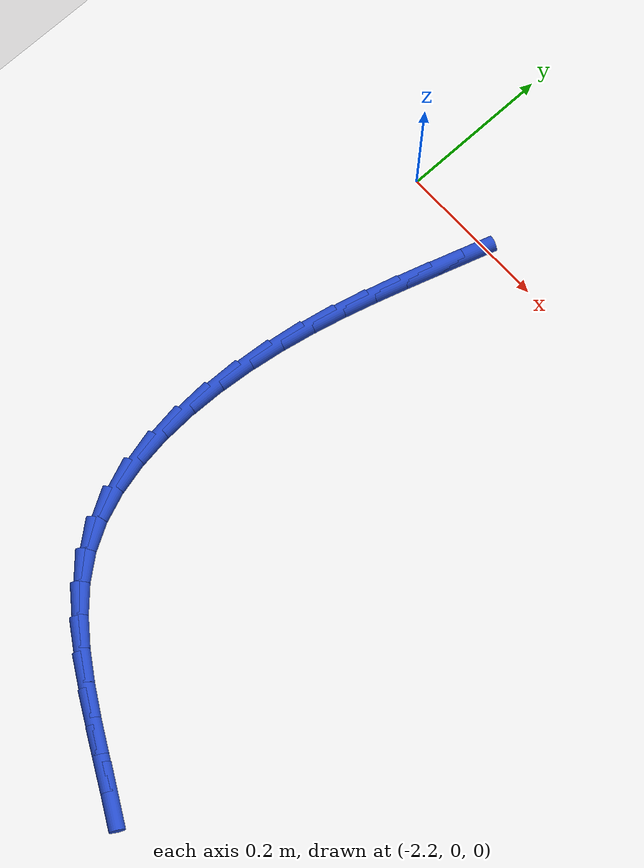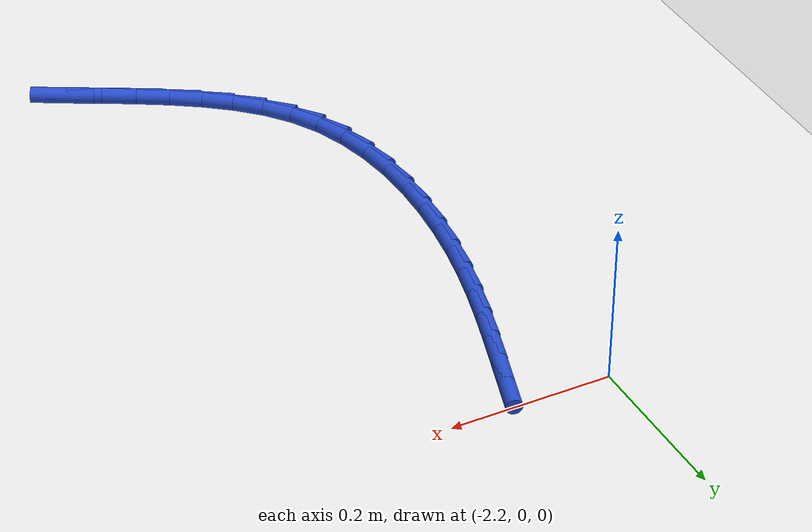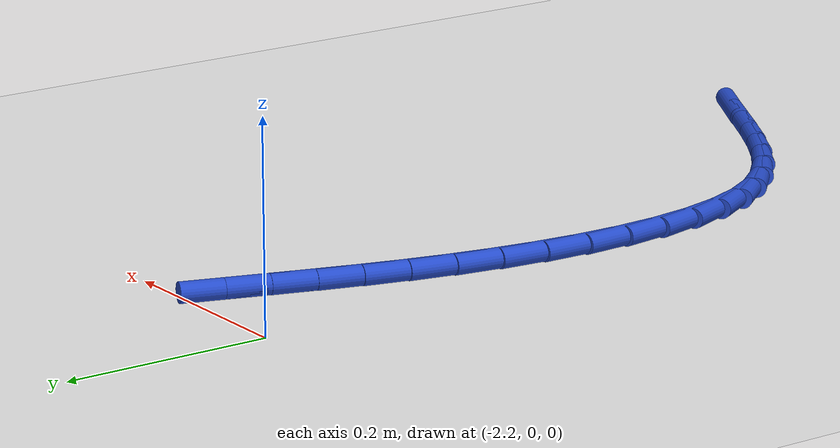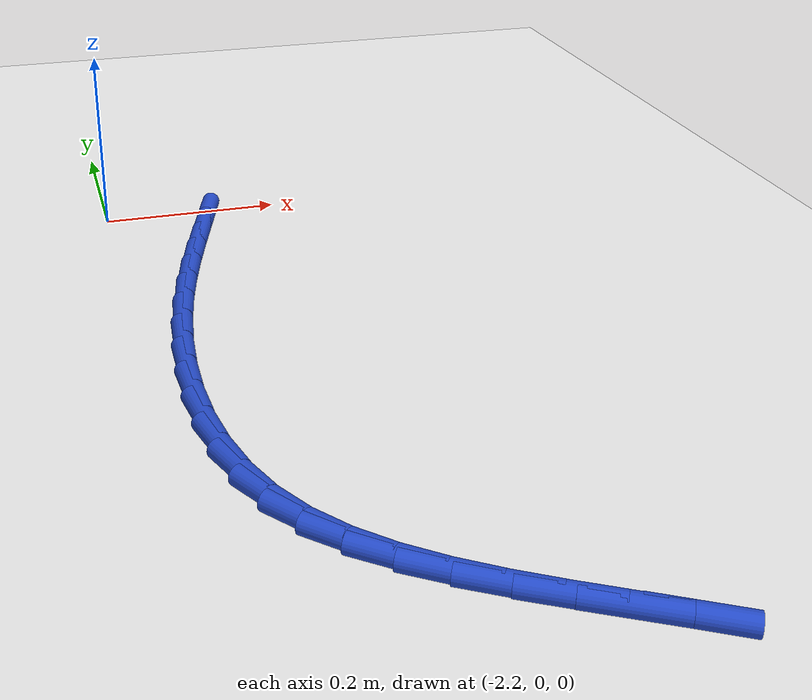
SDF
<sdf version="1.6">
 <world name="default">
  <model name="ground_plane">
   <static>1</static>
   <link name="link">
    <collision name="collision">
     <geometry><plane><normal>0 0 1</normal><size>100 100</size></plane></geometry>
     <surface><friction><ode><mu>100</mu><mu2>50</mu2></ode></friction></surface>
    </collision>
    <visual name="visual">
     <cast_shadows>0</cast_shadows>
     <geometry><plane><normal>0 0 1</normal><size>100 100</size></plane></geometry>
     <material>
      <script><uri>file://media/materials/scripts/gazebo.material</uri><name>Gazebo/WhiteGlow</name></script>
     </material>
    </visual>
   </link>
  </model>
  <model name="line">
   <link name="link_86">
    <pose>-2.08523998965005 -0.02861841032791617 0.01 0 1.57 1.261742258694907</pose>
    <collision name="collision">
     <geometry><cylinder><radius>0.01</radius><length>0.08</length></cylinder></geometry>
    </collision>
    <visual name="visual">
     <material>
      <script><name>Gazebo/Blue</name><uri>file://media/materials/scripts/gazebo.material</uri></script>
     </material>
     <geometry><cylinder><radius>0.01</radius><length>0.08</length></cylinder></geometry>
    </visual>
   </link>
   <link name="link_87">
    <pose>-2.098021790153302 -0.06865100637395279 0.01 0 1.57 1.263181449118931</pose>
    <collision name="collision">
     <geometry><cylinder><radius>0.01</radius><length>0.08</length></cylinder></geometry>
    </collision>
    <visual name="visual">
     <material>
      <script><name>Gazebo/Blue</name><uri>file://media/materials/scripts/gazebo.material</uri></script>
     </material>
     <geometry><cylinder><radius>0.01</radius><length>0.08</length></cylinder></geometry>
    </visual>
   </link>
   <link name="link_88">
    <pose>-2.110824073930931 -0.10894782075881002 0.01 0 1.57 1.2758667070259482</pose>
    <collision name="collision">
     <geometry><cylinder><radius>0.01</radius><length>0.08</length></cylinder></geometry>
    </collision>
    <visual name="visual">
     <material>
      <script><name>Gazebo/Blue</name><uri>file://media/materials/scripts/gazebo.material</uri></script>
     </material>
     <geometry><cylinder><radius>0.01</radius><length>0.08</length></cylinder></geometry>
    </visual>
   </link>
   <link name="link_89">
    <pose>-2.123226004953371 -0.14977193562555435 0.01 0 1.57 1.2993774944632717</pose>
    <collision name="collision">
     <geometry><cylinder><radius>0.01</radius><length>0.08</length></cylinder></geometry>
    </collision>
    <visual name="visual">
     <material>
      <script><name>Gazebo/Blue</name><uri>file://media/materials/scripts/gazebo.material</uri></script>
     </material>
     <geometry><cylinder><radius>0.01</radius><length>0.08</length></cylinder></geometry>
    </visual>
   </link>
   <link name="link_90">
    <pose>-2.1348067471910532 -0.1913864331172499 0.01 0 1.57 1.3330717679964517</pose>
    <collision name="collision">
     <geometry><cylinder><radius>0.01</radius><length>0.08</length></cylinder></geometry>
    </collision>
    <visual name="visual">
     <material>
      <script><name>Gazebo/Blue</name><uri>file://media/materials/scripts/gazebo.material</uri></script>
     </material>
     <geometry><cylinder><radius>0.01</radius><length>0.08</length></cylinder></geometry>
    </visual>
   </link>
   <link name="link_91">
    <pose>-2.1451454646144126 -0.2340543953769632 0.01 0 1.57 1.3760109232922908</pose>
    <collision name="collision">
     <geometry><cylinder><radius>0.01</radius><length>0.08</length></cylinder></geometry>
    </collision>
    <visual name="visual">
     <material>
      <script><name>Gazebo/Blue</name><uri>file://media/materials/scripts/gazebo.material</uri></script>
     </material>
     <geometry><cylinder><radius>0.01</radius><length>0.08</length></cylinder></geometry>
    </visual>
   </link>
   <link name="link_92">
    <pose>-2.1538213338160794 -0.27803030815446644 0.01 0 1.57 1.4258295858289511</pose>
    <collision name="collision">
     <geometry><cylinder><radius>0.01</radius><length>0.08</length></cylinder></geometry>
    </collision>
    <visual name="visual">
     <material>
      <script><name>Gazebo/Blue</name><uri>file://media/materials/scripts/gazebo.material</uri></script>
     </material>
     <geometry><cylinder><radius>0.01</radius><length>0.08</length></cylinder></geometry>
    </visual>
   </link>
   <link name="link_93">
    <pose>-2.1604140888566468 -0.3231889916723535 0.01 0 1.57 1.4815246946805791</pose>
    <collision name="collision">
     <geometry><cylinder><radius>0.01</radius><length>0.08</length></cylinder></geometry>
    </collision>
    <visual name="visual">
     <material>
      <script><name>Gazebo/Blue</name><uri>file://media/materials/scripts/gazebo.material</uri></script>
     </material>
     <geometry><cylinder><radius>0.01</radius><length>0.08</length></cylinder></geometry>
    </visual>
   </link>
   <link name="link_94">
    <pose>-2.1645042291590544 -0.3688840134188471 0.01 0 1.57 1.5451564059516163</pose>
    <collision name="collision">
     <geometry><cylinder><radius>0.01</radius><length>0.08</length></cylinder></geometry>
    </collision>
    <visual name="visual">
     <material>
      <script><name>Gazebo/Blue</name><uri>file://media/materials/scripts/gazebo.material</uri></script>
     </material>
     <geometry><cylinder><radius>0.01</radius><length>0.08</length></cylinder></geometry>
    </visual>
   </link>
   <link name="link_95">
    <pose>-2.1656723096610557 -0.4144311323194508 0.01 0 1.57 -1.5222283656646367</pose>
    <collision name="collision">
     <geometry><cylinder><radius>0.01</radius><length>0.08</length></cylinder></geometry>
    </collision>
    <visual name="visual">
     <material>
      <script><name>Gazebo/Blue</name><uri>file://media/materials/scripts/gazebo.material</uri></script>
     </material>
     <geometry><cylinder><radius>0.01</radius><length>0.08</length></cylinder></geometry>
    </visual>
   </link>
   <link name="link_96">
    <pose>-2.1634988853004082 -0.4591461072996706 0.01 0 1.57 -1.4342765742986179</pose>
    <collision name="collision">
     <geometry><cylinder><radius>0.01</radius><length>0.08</length></cylinder></geometry>
    </collision>
    <visual name="visual">
     <material>
      <script><name>Gazebo/Blue</name><uri>file://media/materials/scripts/gazebo.material</uri></script>
     </material>
     <geometry><cylinder><radius>0.01</radius><length>0.08</length></cylinder></geometry>
    </visual>
   </link>
   <link name="link_97">
    <pose>-2.1575645110148685 -0.5023446972850116 0.01 0 1.57 -1.3289128078339891</pose>
    <collision name="collision">
     <geometry><cylinder><radius>0.01</radius><length>0.08</length></cylinder></geometry>
    </collision>
    <visual name="visual">
     <material>
      <script><name>Gazebo/Blue</name><uri>file://media/materials/scripts/gazebo.material</uri></script>
     </material>
     <geometry><cylinder><radius>0.01</radius><length>0.08</length></cylinder></geometry>
    </visual>
   </link>
   <link name="link_98">
    <pose>-2.147449741742191 -0.5433426612009791 0.01 0 1.57 -1.2023494142338553</pose>
    <collision name="collision">
     <geometry><cylinder><radius>0.01</radius><length>0.08</length></cylinder></geometry>
    </collision>
    <visual name="visual">
     <material>
      <script><name>Gazebo/Blue</name><uri>file://media/materials/scripts/gazebo.material</uri></script>
     </material>
     <geometry><cylinder><radius>0.01</radius><length>0.08</length></cylinder></geometry>
    </visual>
   </link>
   <link name="link_99">
    <pose>-2.1327351324201325 -0.5814557579730788 0.01 0 1.57 -1.0521143256011831</pose>
    <collision name="collision">
     <geometry><cylinder><radius>0.01</radius><length>0.08</length></cylinder></geometry>
    </collision>
    <visual name="visual">
     <material>
      <script><name>Gazebo/Blue</name><uri>file://media/materials/scripts/gazebo.material</uri></script>
     </material>
     <geometry><cylinder><radius>0.01</radius><length>0.08</length></cylinder></geometry>
    </visual>
   </link>
   <link name="link_100">
    <pose>-2.113010748948508 -0.6160106488026983 0.01 0 1.57 -0.8955677321090679</pose>
    <collision name="collision">
     <geometry><cylinder><radius>0.01</radius><length>0.08</length></cylinder></geometry>
    </collision>
    <visual name="visual">
     <material>
      <script><name>Gazebo/Blue</name><uri>file://media/materials/scripts/gazebo.material</uri></script>
     </material>
     <geometry><cylinder><radius>0.01</radius><length>0.08</length></cylinder></geometry>
    </visual>
   </link>
   <link name="link_101">
    <pose>-2.0883156555762556 -0.6468486750931648 0.01 0 1.57 -0.7623970203849093</pose>
    <collision name="collision">
     <geometry><cylinder><radius>0.01</radius><length>0.08</length></cylinder></geometry>
    </collision>
    <visual name="visual">
     <material>
      <script><name>Gazebo/Blue</name><uri>file://media/materials/scripts/gazebo.material</uri></script>
     </material>
     <geometry><cylinder><radius>0.01</radius><length>0.08</length></cylinder></geometry>
    </visual>
   </link>
   <link name="link_102">
    <pose>-2.059322688859554 -0.6745376621195408 0.01 0 1.57 -0.657788095206005</pose>
    <collision name="collision">
     <geometry><cylinder><radius>0.01</radius><length>0.08</length></cylinder></geometry>
    </collision>
    <visual name="visual">
     <material>
      <script><name>Gazebo/Blue</name><uri>file://media/materials/scripts/gazebo.material</uri></script>
     </material>
     <geometry><cylinder><radius>0.01</radius><length>0.08</length></cylinder></geometry>
    </visual>
   </link>
   <link name="link_103">
    <pose>-2.026752532840811 -0.6997002820264192 0.01 0 1.57 -0.580957150598347</pose>
    <collision name="collision">
     <geometry><cylinder><radius>0.01</radius><length>0.08</length></cylinder></geometry>
    </collision>
    <visual name="visual">
     <material>
      <script><name>Gazebo/Blue</name><uri>file://media/materials/scripts/gazebo.material</uri></script>
     </material>
     <geometry><cylinder><radius>0.01</radius><length>0.08</length></cylinder></geometry>
    </visual>
   </link>
   <link name="link_104">
    <pose>-1.9913258715624316 -0.7229592069583942 0.01 0 1.57 -0.5293934258413752</pose>
    <collision name="collision">
     <geometry><cylinder><radius>0.01</radius><length>0.08</length></cylinder></geometry>
    </collision>
    <visual name="visual">
     <material>
      <script><name>Gazebo/Blue</name><uri>file://media/materials/scripts/gazebo.material</uri></script>
     </material>
     <geometry><cylinder><radius>0.01</radius><length>0.08</length></cylinder></geometry>
    </visual>
   </link>
   <link name="link_105">
    <pose>-1.953763389066824 -0.7449371090600582 0.01 0 1.57 -0.5005132044188689</pose>
    <collision name="collision">
     <geometry><cylinder><radius>0.01</radius><length>0.08</length></cylinder></geometry>
    </collision>
    <visual name="visual">
     <material>
      <script><name>Gazebo/Blue</name><uri>file://media/materials/scripts/gazebo.material</uri></script>
     </material>
     <geometry><cylinder><radius>0.01</radius><length>0.08</length></cylinder></geometry>
    </visual>
   </link>
   <link name="link_106">
    <pose>-1.9147857693963948 -0.7662566604760045 0.01 0 1.57 -0.4924156810039671</pose>
    <collision name="collision">
     <geometry><cylinder><radius>0.01</radius><length>0.08</length></cylinder></geometry>
    </collision>
    <visual name="visual">
     <material>
      <script><name>Gazebo/Blue</name><uri>file://media/materials/scripts/gazebo.material</uri></script>
     </material>
     <geometry><cylinder><radius>0.01</radius><length>0.08</length></cylinder></geometry>
    </visual>
   </link>
   <link name="link_107">
    <pose>-1.875113696593551 -0.7875405333508273 0.01 0 1.57 -0.5041137214755252</pose>
    <collision name="collision">
     <geometry><cylinder><radius>0.01</radius><length>0.08</length></cylinder></geometry>
    </collision>
    <visual name="visual">
     <material>
      <script><name>Gazebo/Blue</name><uri>file://media/materials/scripts/gazebo.material</uri></script>
     </material>
     <geometry><cylinder><radius>0.01</radius><length>0.08</length></cylinder></geometry>
    </visual>
   </link>
  </model>
 </world>
</sdf>
